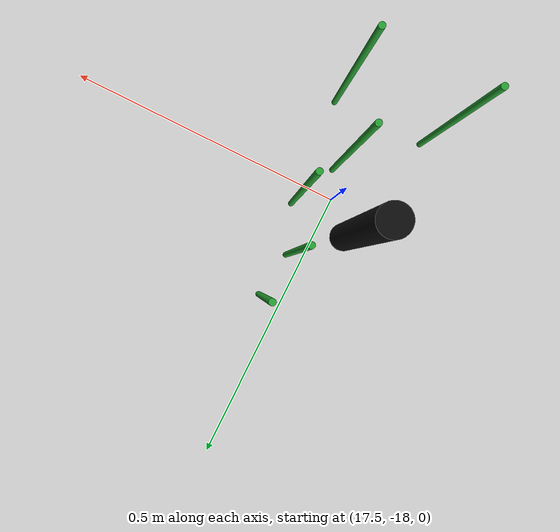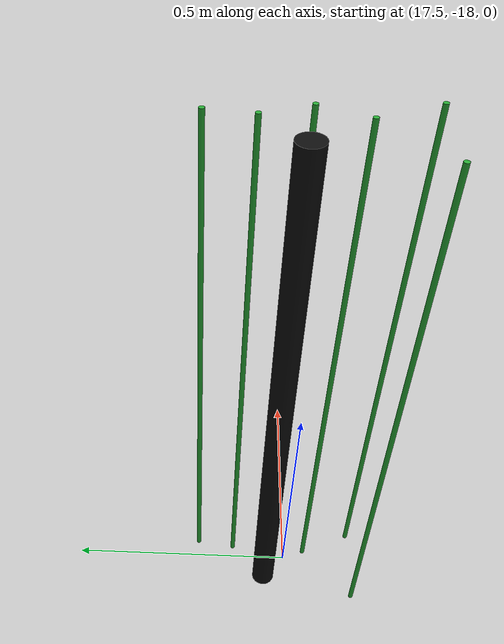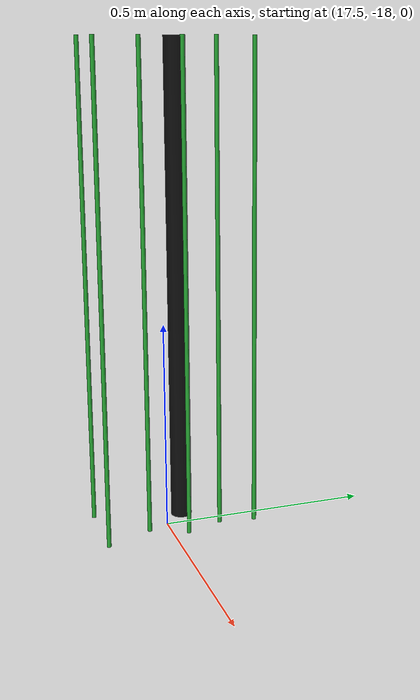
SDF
<sdf version="1.6">
 <world name="default">
  <model name="pole_29">
   <static>1</static>
   <pose>17.45 -17.95 0.575 0 -0 0</pose>
   <link name="link">
    <collision name="collision">
     <geometry><cylinder><length>1.15</length><radius>0.025</radius></cylinder></geometry>
    </collision>
    <visual name="visual">
     <geometry><cylinder><length>1.15</length><radius>0.025</radius></cylinder></geometry>
     <material>
      <script><uri>file://media/materials/scripts/gazebo.material</uri><name>Gazebo/Chrome</name></script>
      <shader type="vertex"><normal_map>__default__</normal_map></shader>
      <emissive>0.1 0.1 0.1 1</emissive>
      <specular>0.01 0.01 0.01 1</specular>
      <ambient>0.5 0.5 0.5 1</ambient>
      <diffuse>0.05 0.05 0.05 1</diffuse>
     </material>
    </visual>
   </link>
  </model>
  <model name="pole_27_clone_clone_195">
   <link name="link">
    <inertial>
     <mass>1</mass>
     <inertia><ixx>1</ixx><ixy>0</ixy><ixz>0</ixz><iyy>1</iyy><iyz>0</iyz><izz>1</izz></inertia>
    </inertial>
    <visual name="visual">
     <geometry><cylinder><length>1.15</length><radius>0.005</radius></cylinder></geometry>
     <material>
      <script><uri>file://media/materials/scripts/gazebo.material</uri><name>Gazebo/Green</name></script>
      <shader type="vertex"><normal_map>__default__</normal_map></shader>
      <emissive>0 0.1 0 1</emissive>
      <specular>0 0.01 0 1</specular>
      <ambient>0 0.5 0 1</ambient>
      <diffuse>0 0.05 0 1</diffuse>
     </material>
    </visual>
    <collision name="collision">
     <geometry><cylinder><radius>0.005</radius><length>1.15</length></cylinder></geometry>
     <surface>
      <friction>
       <ode><mu>1</mu><mu2>1</mu2><fdir1>0 0 0</fdir1><slip1>0</slip1><slip2>0</slip2></ode>
       <torsional>
        <coefficient>1</coefficient>
        <patch_radius>0</patch_radius>
        <surface_radius>0</surface_radius>
        <use_patch_radius>1</use_patch_radius>
        <ode><slip>0</slip></ode>
       </torsional>
      </friction>
      <bounce><restitution_coefficient>0</restitution_coefficient><threshold>1e+06</threshold></bounce>
      <contact>
       <collide_without_contact>0</collide_without_contact>
       <collide_without_contact_bitmask>1</collide_without_contact_bitmask>
       <collide_bitmask>1</collide_bitmask>
       <ode>
        <soft_cfm>0</soft_cfm>
        <soft_erp>0.2</soft_erp>
        <kp>1e+13</kp>
        <kd>1</kd>
        <max_vel>0.01</max_vel>
        <min_depth>0</min_depth>
       </ode>
       <bullet>
        <split_impulse>1</split_impulse>
        <split_impulse_penetration_threshold>-0.01</split_impulse_penetration_threshold>
        <soft_cfm>0</soft_cfm>
        <soft_erp>0.2</soft_erp>
        <kp>1e+13</kp>
        <kd>1</kd>
       </bullet>
      </contact>
     </surface>
    </collision>
   </link>
   <static>1</static>
   <pose>17.5214 -18.0491 0.575 0 -0 0</pose>
  </model>
  <model name="pole_27_clone_clone_196">
   <link name="link">
    <inertial>
     <mass>1</mass>
     <inertia><ixx>1</ixx><ixy>0</ixy><ixz>0</ixz><iyy>1</iyy><iyz>0</iyz><izz>1</izz></inertia>
    </inertial>
    <visual name="visual">
     <geometry><cylinder><length>1.15</length><radius>0.005</radius></cylinder></geometry>
     <material>
      <script><uri>file://media/materials/scripts/gazebo.material</uri><name>Gazebo/Green</name></script>
      <shader type="vertex"><normal_map>__default__</normal_map></shader>
      <emissive>0 0.1 0 1</emissive>
      <specular>0 0.01 0 1</specular>
      <ambient>0 0.5 0 1</ambient>
      <diffuse>0 0.05 0 1</diffuse>
     </material>
    </visual>
    <collision name="collision">
     <geometry><cylinder><radius>0.005</radius><length>1.15</length></cylinder></geometry>
     <surface>
      <friction>
       <ode><mu>1</mu><mu2>1</mu2><fdir1>0 0 0</fdir1><slip1>0</slip1><slip2>0</slip2></ode>
       <torsional>
        <coefficient>1</coefficient>
        <patch_radius>0</patch_radius>
        <surface_radius>0</surface_radius>
        <use_patch_radius>1</use_patch_radius>
        <ode><slip>0</slip></ode>
       </torsional>
      </friction>
      <bounce><restitution_coefficient>0</restitution_coefficient><threshold>1e+06</threshold></bounce>
      <contact>
       <collide_without_contact>0</collide_without_contact>
       <collide_without_contact_bitmask>1</collide_without_contact_bitmask>
       <collide_bitmask>1</collide_bitmask>
       <ode>
        <soft_cfm>0</soft_cfm>
        <soft_erp>0.2</soft_erp>
        <kp>1e+13</kp>
        <kd>1</kd>
        <max_vel>0.01</max_vel>
        <min_depth>0</min_depth>
       </ode>
       <bullet>
        <split_impulse>1</split_impulse>
        <split_impulse_penetration_threshold>-0.01</split_impulse_penetration_threshold>
        <soft_cfm>0</soft_cfm>
        <soft_erp>0.2</soft_erp>
        <kp>1e+13</kp>
        <kd>1</kd>
       </bullet>
      </contact>
     </surface>
    </collision>
   </link>
   <static>1</static>
   <pose>17.5606 -17.9626 0.575 0 -0 0</pose>
  </model>
  <model name="pole_27_clone_clone_197">
   <link name="link">
    <inertial>
     <mass>1</mass>
     <inertia><ixx>1</ixx><ixy>0</ixy><ixz>0</ixz><iyy>1</iyy><iyz>0</iyz><izz>1</izz></inertia>
    </inertial>
    <visual name="visual">
     <geometry><cylinder><length>1.15</length><radius>0.005</radius></cylinder></geometry>
     <material>
      <script><uri>file://media/materials/scripts/gazebo.material</uri><name>Gazebo/Green</name></script>
      <shader type="vertex"><normal_map>__default__</normal_map></shader>
      <emissive>0 0.1 0 1</emissive>
      <specular>0 0.01 0 1</specular>
      <ambient>0 0.5 0 1</ambient>
      <diffuse>0 0.05 0 1</diffuse>
     </material>
    </visual>
    <collision name="collision">
     <geometry><cylinder><radius>0.005</radius><length>1.15</length></cylinder></geometry>
     <surface>
      <friction>
       <ode><mu>1</mu><mu2>1</mu2><fdir1>0 0 0</fdir1><slip1>0</slip1><slip2>0</slip2></ode>
       <torsional>
        <coefficient>1</coefficient>
        <patch_radius>0</patch_radius>
        <surface_radius>0</surface_radius>
        <use_patch_radius>1</use_patch_radius>
        <ode><slip>0</slip></ode>
       </torsional>
      </friction>
      <bounce><restitution_coefficient>0</restitution_coefficient><threshold>1e+06</threshold></bounce>
      <contact>
       <collide_without_contact>0</collide_without_contact>
       <collide_without_contact_bitmask>1</collide_without_contact_bitmask>
       <collide_bitmask>1</collide_bitmask>
       <ode>
        <soft_cfm>0</soft_cfm>
        <soft_erp>0.2</soft_erp>
        <kp>1e+13</kp>
        <kd>1</kd>
        <max_vel>0.01</max_vel>
        <min_depth>0</min_depth>
       </ode>
       <bullet>
        <split_impulse>1</split_impulse>
        <split_impulse_penetration_threshold>-0.01</split_impulse_penetration_threshold>
        <soft_cfm>0</soft_cfm>
        <soft_erp>0.2</soft_erp>
        <kp>1e+13</kp>
        <kd>1</kd>
       </bullet>
      </contact>
     </surface>
    </collision>
   </link>
   <static>1</static>
   <pose>17.5713 -18.1593 0.575 0 -0 0</pose>
  </model>
  <model name="pole_27_clone_clone_198">
   <link name="link">
    <inertial>
     <mass>1</mass>
     <inertia><ixx>1</ixx><ixy>0</ixy><ixz>0</ixz><iyy>1</iyy><iyz>0</iyz><izz>1</izz></inertia>
    </inertial>
    <visual name="visual">
     <geometry><cylinder><length>1.15</length><radius>0.005</radius></cylinder></geometry>
     <material>
      <script><uri>file://media/materials/scripts/gazebo.material</uri><name>Gazebo/Green</name></script>
      <shader type="vertex"><normal_map>__default__</normal_map></shader>
      <emissive>0 0.1 0 1</emissive>
      <specular>0 0.01 0 1</specular>
      <ambient>0 0.5 0 1</ambient>
      <diffuse>0 0.05 0 1</diffuse>
     </material>
    </visual>
    <collision name="collision">
     <geometry><cylinder><radius>0.005</radius><length>1.15</length></cylinder></geometry>
     <surface>
      <friction>
       <ode><mu>1</mu><mu2>1</mu2><fdir1>0 0 0</fdir1><slip1>0</slip1><slip2>0</slip2></ode>
       <torsional>
        <coefficient>1</coefficient>
        <patch_radius>0</patch_radius>
        <surface_radius>0</surface_radius>
        <use_patch_radius>1</use_patch_radius>
        <ode><slip>0</slip></ode>
       </torsional>
      </friction>
      <bounce><restitution_coefficient>0</restitution_coefficient><threshold>1e+06</threshold></bounce>
      <contact>
       <collide_without_contact>0</collide_without_contact>
       <collide_without_contact_bitmask>1</collide_without_contact_bitmask>
       <collide_bitmask>1</collide_bitmask>
       <ode>
        <soft_cfm>0</soft_cfm>
        <soft_erp>0.2</soft_erp>
        <kp>1e+13</kp>
        <kd>1</kd>
        <max_vel>0.01</max_vel>
        <min_depth>0</min_depth>
       </ode>
       <bullet>
        <split_impulse>1</split_impulse>
        <split_impulse_penetration_threshold>-0.01</split_impulse_penetration_threshold>
        <soft_cfm>0</soft_cfm>
        <soft_erp>0.2</soft_erp>
        <kp>1e+13</kp>
        <kd>1</kd>
       </bullet>
      </contact>
     </surface>
    </collision>
   </link>
   <static>1</static>
   <pose>17.4015 -18.1591 0.575 0 -0 0</pose>
  </model>
  <model name="pole_27_clone_clone_200">
   <link name="link">
    <inertial>
     <mass>1</mass>
     <inertia><ixx>1</ixx><ixy>0</ixy><ixz>0</ixz><iyy>1</iyy><iyz>0</iyz><izz>1</izz></inertia>
    </inertial>
    <visual name="visual">
     <geometry><cylinder><length>1.15</length><radius>0.005</radius></cylinder></geometry>
     <material>
      <script><uri>file://media/materials/scripts/gazebo.material</uri><name>Gazebo/Green</name></script>
      <shader type="vertex"><normal_map>__default__</normal_map></shader>
      <emissive>0 0.1 0 1</emissive>
      <specular>0 0.01 0 1</specular>
      <ambient>0 0.5 0 1</ambient>
      <diffuse>0 0.05 0 1</diffuse>
     </material>
    </visual>
    <collision name="collision">
     <geometry><cylinder><radius>0.005</radius><length>1.15</length></cylinder></geometry>
     <surface>
      <friction>
       <ode><mu>1</mu><mu2>1</mu2><fdir1>0 0 0</fdir1><slip1>0</slip1><slip2>0</slip2></ode>
       <torsional>
        <coefficient>1</coefficient>
        <patch_radius>0</patch_radius>
        <surface_radius>0</surface_radius>
        <use_patch_radius>1</use_patch_radius>
        <ode><slip>0</slip></ode>
       </torsional>
      </friction>
      <bounce><restitution_coefficient>0</restitution_coefficient><threshold>1e+06</threshold></bounce>
      <contact>
       <collide_without_contact>0</collide_without_contact>
       <collide_without_contact_bitmask>1</collide_without_contact_bitmask>
       <collide_bitmask>1</collide_bitmask>
       <ode>
        <soft_cfm>0</soft_cfm>
        <soft_erp>0.2</soft_erp>
        <kp>1e+13</kp>
        <kd>1</kd>
        <max_vel>0.01</max_vel>
        <min_depth>0</min_depth>
       </ode>
       <bullet>
        <split_impulse>1</split_impulse>
        <split_impulse_penetration_threshold>-0.01</split_impulse_penetration_threshold>
        <soft_cfm>0</soft_cfm>
        <soft_erp>0.2</soft_erp>
        <kp>1e+13</kp>
        <kd>1</kd>
       </bullet>
      </contact>
     </surface>
    </collision>
   </link>
   <static>1</static>
   <pose>17.5287 -17.876 0.575 0 -0 0</pose>
  </model>
  <model name="pole_27_clone_clone_201">
   <link name="link">
    <inertial>
     <mass>1</mass>
     <inertia><ixx>1</ixx><ixy>0</ixy><ixz>0</ixz><iyy>1</iyy><iyz>0</iyz><izz>1</izz></inertia>
    </inertial>
    <visual name="visual">
     <geometry><cylinder><length>1.15</length><radius>0.005</radius></cylinder></geometry>
     <material>
      <script><uri>file://media/materials/scripts/gazebo.material</uri><name>Gazebo/Green</name></script>
      <shader type="vertex"><normal_map>__default__</normal_map></shader>
      <emissive>0 0.1 0 1</emissive>
      <specular>0 0.01 0 1</specular>
      <ambient>0 0.5 0 1</ambient>
      <diffuse>0 0.05 0 1</diffuse>
     </material>
    </visual>
    <collision name="collision">
     <geometry><cylinder><radius>0.005</radius><length>1.15</length></cylinder></geometry>
     <surface>
      <friction>
       <ode><mu>1</mu><mu2>1</mu2><fdir1>0 0 0</fdir1><slip1>0</slip1><slip2>0</slip2></ode>
       <torsional>
        <coefficient>1</coefficient>
        <patch_radius>0</patch_radius>
        <surface_radius>0</surface_radius>
        <use_patch_radius>1</use_patch_radius>
        <ode><slip>0</slip></ode>
       </torsional>
      </friction>
      <bounce><restitution_coefficient>0</restitution_coefficient><threshold>1e+06</threshold></bounce>
      <contact>
       <collide_without_contact>0</collide_without_contact>
       <collide_without_contact_bitmask>1</collide_without_contact_bitmask>
       <collide_bitmask>1</collide_bitmask>
       <ode>
        <soft_cfm>0</soft_cfm>
        <soft_erp>0.2</soft_erp>
        <kp>1e+13</kp>
        <kd>1</kd>
        <max_vel>0.01</max_vel>
        <min_depth>0</min_depth>
       </ode>
       <bullet>
        <split_impulse>1</split_impulse>
        <split_impulse_penetration_threshold>-0.01</split_impulse_penetration_threshold>
        <soft_cfm>0</soft_cfm>
        <soft_erp>0.2</soft_erp>
        <kp>1e+13</kp>
        <kd>1</kd>
       </bullet>
      </contact>
     </surface>
    </collision>
   </link>
   <static>1</static>
   <pose>17.5411 -17.7913 0.575 0 -0 0</pose>
  </model>
 </world>
</sdf>
